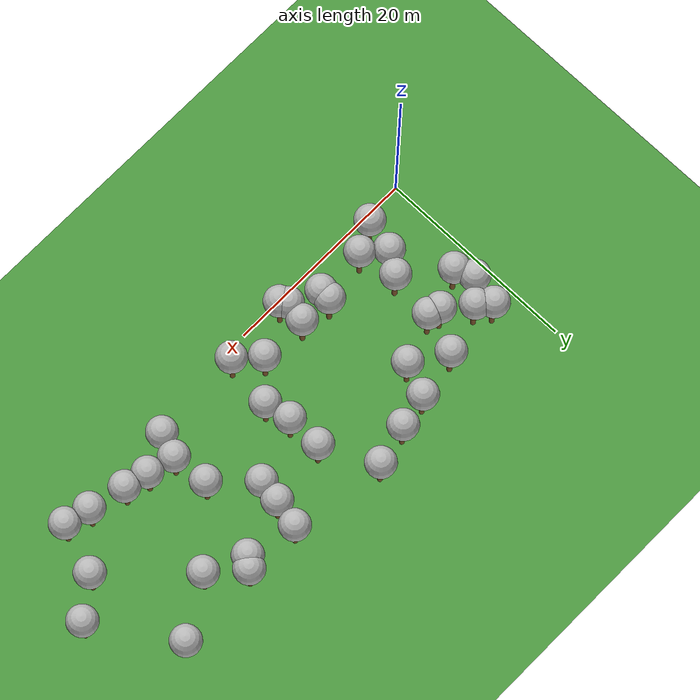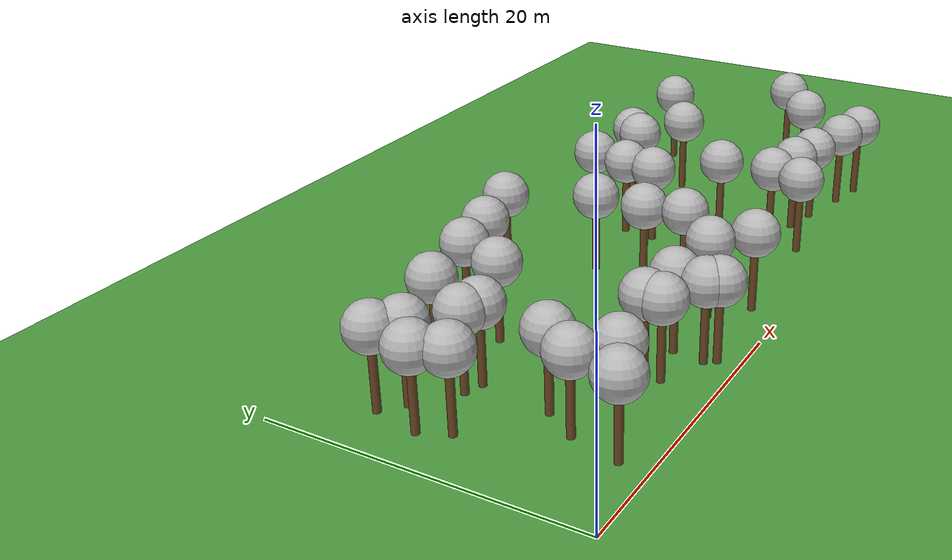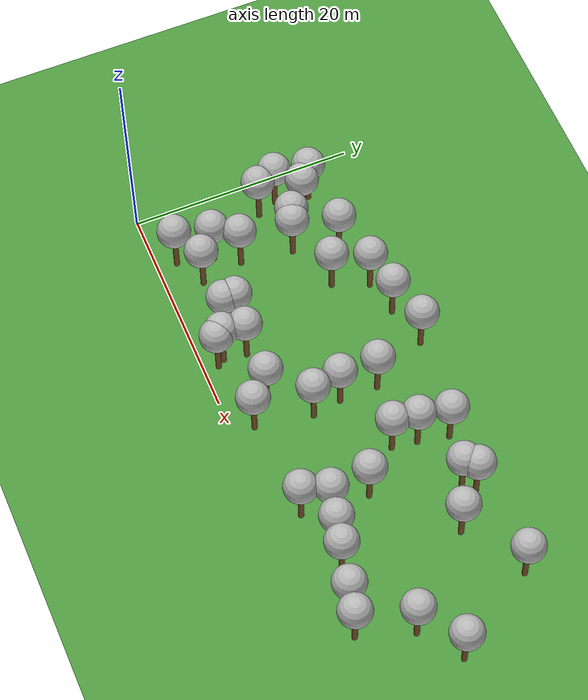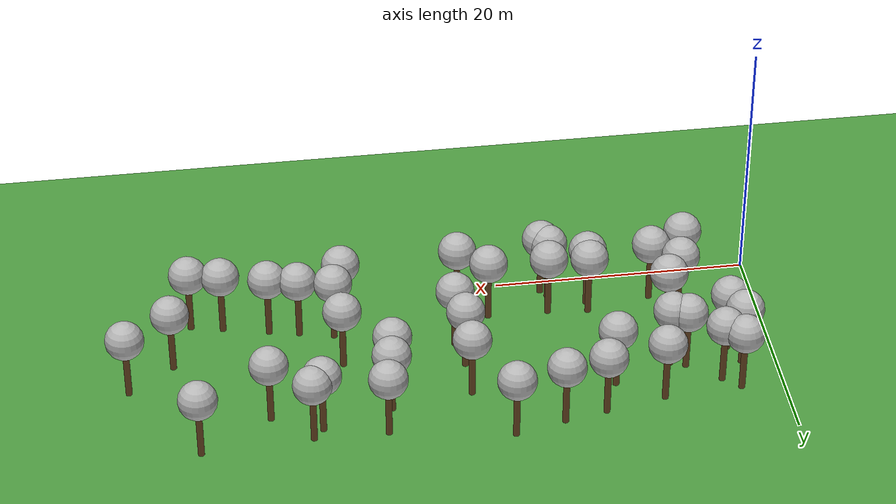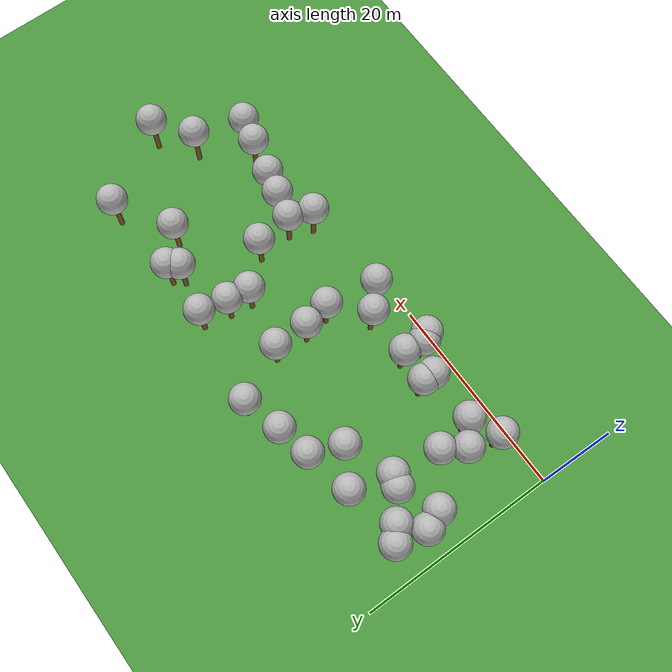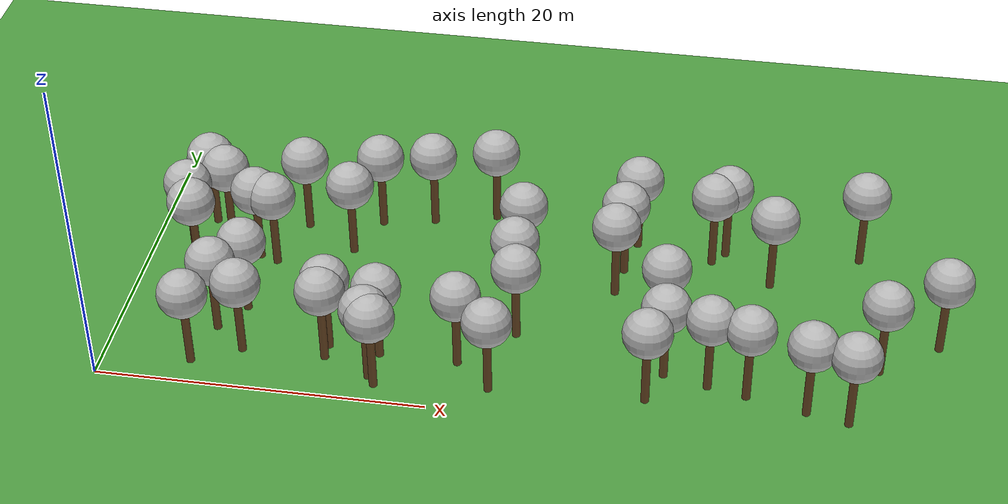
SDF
<sdf version="1.5">
 <world name="default">
  <model name="tree_simple495">
   <static>1</static>
   <link name="link">
    <pose>0 0 0.1 0 -0 0</pose>
    <collision name="collision_trunk">
     <pose>0 0 2 0 -0 0</pose>
     <geometry><cylinder><radius>0.25</radius><length>4</length></cylinder></geometry>
    </collision>
    <collision name="collision_treetop">
     <pose>0 0 5.2 0 -0 0</pose>
     <geometry><sphere><radius>1.5</radius></sphere></geometry>
    </collision>
    <visual name="trunk">
     <pose>0 0 2 0 -0 0</pose>
     <geometry><cylinder><radius>0.25</radius><length>4</length></cylinder></geometry>
     <material>
      <script>
       <uri>model://tree_simple/scripts</uri>
       <uri>model://tree_simple/materials/textures</uri>
       <name>TreeSimple/Trunk</name>
      </script>
     </material>
    </visual>
    <visual name="treetop">
     <pose>0 0 5.2 0 -0 0</pose>
     <geometry><sphere><radius>1.5</radius></sphere></geometry>
     <material>
      <script>
       <uri>model://tree_simple/scripts</uri>
       <uri>model://tree_simple/materials/textures</uri>
       <name>TreeSimple/Treetop</name>
      </script>
     </material>
    </visual>
   </link>
   <pose>13.2663357304 3.23501246435 0 0 -0 0</pose>
  </model>
  <model name="tree_simple487">
   <static>1</static>
   <link name="link">
    <pose>0 0 0.1 0 -0 0</pose>
    <collision name="collision_trunk">
     <pose>0 0 2 0 -0 0</pose>
     <geometry><cylinder><radius>0.25</radius><length>4</length></cylinder></geometry>
    </collision>
    <collision name="collision_treetop">
     <pose>0 0 5.2 0 -0 0</pose>
     <geometry><sphere><radius>1.5</radius></sphere></geometry>
    </collision>
    <visual name="trunk">
     <pose>0 0 2 0 -0 0</pose>
     <geometry><cylinder><radius>0.25</radius><length>4</length></cylinder></geometry>
     <material>
      <script>
       <uri>model://tree_simple/scripts</uri>
       <uri>model://tree_simple/materials/textures</uri>
       <name>TreeSimple/Trunk</name>
      </script>
     </material>
    </visual>
    <visual name="treetop">
     <pose>0 0 5.2 0 -0 0</pose>
     <geometry><sphere><radius>1.5</radius></sphere></geometry>
     <material>
      <script>
       <uri>model://tree_simple/scripts</uri>
       <uri>model://tree_simple/materials/textures</uri>
       <name>TreeSimple/Treetop</name>
      </script>
     </material>
    </visual>
   </link>
   <pose>33.1280168764 8.35331864597 0 0 -0 0</pose>
  </model>
  <model name="tree_simple486">
   <static>1</static>
   <link name="link">
    <pose>0 0 0.1 0 -0 0</pose>
    <collision name="collision_trunk">
     <pose>0 0 2 0 -0 0</pose>
     <geometry><cylinder><radius>0.25</radius><length>4</length></cylinder></geometry>
    </collision>
    <collision name="collision_treetop">
     <pose>0 0 5.2 0 -0 0</pose>
     <geometry><sphere><radius>1.5</radius></sphere></geometry>
    </collision>
    <visual name="trunk">
     <pose>0 0 2 0 -0 0</pose>
     <geometry><cylinder><radius>0.25</radius><length>4</length></cylinder></geometry>
     <material>
      <script>
       <uri>model://tree_simple/scripts</uri>
       <uri>model://tree_simple/materials/textures</uri>
       <name>TreeSimple/Trunk</name>
      </script>
     </material>
    </visual>
    <visual name="treetop">
     <pose>0 0 5.2 0 -0 0</pose>
     <geometry><sphere><radius>1.5</radius></sphere></geometry>
     <material>
      <script>
       <uri>model://tree_simple/scripts</uri>
       <uri>model://tree_simple/materials/textures</uri>
       <name>TreeSimple/Treetop</name>
      </script>
     </material>
    </visual>
   </link>
   <pose>8.18281559396 11.6524151823 0 0 -0 0</pose>
  </model>
  <model name="tree_simple485">
   <static>1</static>
   <link name="link">
    <pose>0 0 0.1 0 -0 0</pose>
    <collision name="collision_trunk">
     <pose>0 0 2 0 -0 0</pose>
     <geometry><cylinder><radius>0.25</radius><length>4</length></cylinder></geometry>
    </collision>
    <collision name="collision_treetop">
     <pose>0 0 5.2 0 -0 0</pose>
     <geometry><sphere><radius>1.5</radius></sphere></geometry>
    </collision>
    <visual name="trunk">
     <pose>0 0 2 0 -0 0</pose>
     <geometry><cylinder><radius>0.25</radius><length>4</length></cylinder></geometry>
     <material>
      <script>
       <uri>model://tree_simple/scripts</uri>
       <uri>model://tree_simple/materials/textures</uri>
       <name>TreeSimple/Trunk</name>
      </script>
     </material>
    </visual>
    <visual name="treetop">
     <pose>0 0 5.2 0 -0 0</pose>
     <geometry><sphere><radius>1.5</radius></sphere></geometry>
     <material>
      <script>
       <uri>model://tree_simple/scripts</uri>
       <uri>model://tree_simple/materials/textures</uri>
       <name>TreeSimple/Treetop</name>
      </script>
     </material>
    </visual>
   </link>
   <pose>38.4673421664 3.60529435805 0 0 -0 0</pose>
  </model>
  <model name="tree_simple431">
   <static>1</static>
   <link name="link">
    <pose>0 0 0.1 0 -0 0</pose>
    <collision name="collision_trunk">
     <pose>0 0 2 0 -0 0</pose>
     <geometry><cylinder><radius>0.25</radius><length>4</length></cylinder></geometry>
    </collision>
    <collision name="collision_treetop">
     <pose>0 0 5.2 0 -0 0</pose>
     <geometry><sphere><radius>1.5</radius></sphere></geometry>
    </collision>
    <visual name="trunk">
     <pose>0 0 2 0 -0 0</pose>
     <geometry><cylinder><radius>0.25</radius><length>4</length></cylinder></geometry>
     <material>
      <script>
       <uri>model://tree_simple/scripts</uri>
       <uri>model://tree_simple/materials/textures</uri>
       <name>TreeSimple/Trunk</name>
      </script>
     </material>
    </visual>
    <visual name="treetop">
     <pose>0 0 5.2 0 -0 0</pose>
     <geometry><sphere><radius>1.5</radius></sphere></geometry>
     <material>
      <script>
       <uri>model://tree_simple/scripts</uri>
       <uri>model://tree_simple/materials/textures</uri>
       <name>TreeSimple/Treetop</name>
      </script>
     </material>
    </visual>
   </link>
   <pose>21.2091972338 3.93897030512 0 0 -0 0</pose>
  </model>
  <model name="tree_simple421">
   <static>1</static>
   <link name="link">
    <pose>0 0 0.1 0 -0 0</pose>
    <collision name="collision_trunk">
     <pose>0 0 2 0 -0 0</pose>
     <geometry><cylinder><radius>0.25</radius><length>4</length></cylinder></geometry>
    </collision>
    <collision name="collision_treetop">
     <pose>0 0 5.2 0 -0 0</pose>
     <geometry><sphere><radius>1.5</radius></sphere></geometry>
    </collision>
    <visual name="trunk">
     <pose>0 0 2 0 -0 0</pose>
     <geometry><cylinder><radius>0.25</radius><length>4</length></cylinder></geometry>
     <material>
      <script>
       <uri>model://tree_simple/scripts</uri>
       <uri>model://tree_simple/materials/textures</uri>
       <name>TreeSimple/Trunk</name>
      </script>
     </material>
    </visual>
    <visual name="treetop">
     <pose>0 0 5.2 0 -0 0</pose>
     <geometry><sphere><radius>1.5</radius></sphere></geometry>
     <material>
      <script>
       <uri>model://tree_simple/scripts</uri>
       <uri>model://tree_simple/materials/textures</uri>
       <name>TreeSimple/Treetop</name>
      </script>
     </material>
    </visual>
   </link>
   <pose>7.02492588621 12.0559728025 0 0 -0 0</pose>
  </model>
  <model name="tree_simple354">
   <static>1</static>
   <link name="link">
    <pose>0 0 0.1 0 -0 0</pose>
    <collision name="collision_trunk">
     <pose>0 0 2 0 -0 0</pose>
     <geometry><cylinder><radius>0.25</radius><length>4</length></cylinder></geometry>
    </collision>
    <collision name="collision_treetop">
     <pose>0 0 5.2 0 -0 0</pose>
     <geometry><sphere><radius>1.5</radius></sphere></geometry>
    </collision>
    <visual name="trunk">
     <pose>0 0 2 0 -0 0</pose>
     <geometry><cylinder><radius>0.25</radius><length>4</length></cylinder></geometry>
     <material>
      <script>
       <uri>model://tree_simple/scripts</uri>
       <uri>model://tree_simple/materials/textures</uri>
       <name>TreeSimple/Trunk</name>
      </script>
     </material>
    </visual>
    <visual name="treetop">
     <pose>0 0 5.2 0 -0 0</pose>
     <geometry><sphere><radius>1.5</radius></sphere></geometry>
     <material>
      <script>
       <uri>model://tree_simple/scripts</uri>
       <uri>model://tree_simple/materials/textures</uri>
       <name>TreeSimple/Treetop</name>
      </script>
     </material>
    </visual>
   </link>
   <pose>32.6407591413 2.42607799047 0 0 -0 0</pose>
  </model>
  <model name="tree_simple350">
   <static>1</static>
   <link name="link">
    <pose>0 0 0.1 0 -0 0</pose>
    <collision name="collision_trunk">
     <pose>0 0 2 0 -0 0</pose>
     <geometry><cylinder><radius>0.25</radius><length>4</length></cylinder></geometry>
    </collision>
    <collision name="collision_treetop">
     <pose>0 0 5.2 0 -0 0</pose>
     <geometry><sphere><radius>1.5</radius></sphere></geometry>
    </collision>
    <visual name="trunk">
     <pose>0 0 2 0 -0 0</pose>
     <geometry><cylinder><radius>0.25</radius><length>4</length></cylinder></geometry>
     <material>
      <script>
       <uri>model://tree_simple/scripts</uri>
       <uri>model://tree_simple/materials/textures</uri>
       <name>TreeSimple/Trunk</name>
      </script>
     </material>
    </visual>
    <visual name="treetop">
     <pose>0 0 5.2 0 -0 0</pose>
     <geometry><sphere><radius>1.5</radius></sphere></geometry>
     <material>
      <script>
       <uri>model://tree_simple/scripts</uri>
       <uri>model://tree_simple/materials/textures</uri>
       <name>TreeSimple/Treetop</name>
      </script>
     </material>
    </visual>
   </link>
   <pose>5.40258361507 1.7380066323 0 0 -0 0</pose>
  </model>
  <model name="tree_simple346">
   <static>1</static>
   <link name="link">
    <pose>0 0 0.1 0 -0 0</pose>
    <collision name="collision_trunk">
     <pose>0 0 2 0 -0 0</pose>
     <geometry><cylinder><radius>0.25</radius><length>4</length></cylinder></geometry>
    </collision>
    <collision name="collision_treetop">
     <pose>0 0 5.2 0 -0 0</pose>
     <geometry><sphere><radius>1.5</radius></sphere></geometry>
    </collision>
    <visual name="trunk">
     <pose>0 0 2 0 -0 0</pose>
     <geometry><cylinder><radius>0.25</radius><length>4</length></cylinder></geometry>
     <material>
      <script>
       <uri>model://tree_simple/scripts</uri>
       <uri>model://tree_simple/materials/textures</uri>
       <name>TreeSimple/Trunk</name>
      </script>
     </material>
    </visual>
    <visual name="treetop">
     <pose>0 0 5.2 0 -0 0</pose>
     <geometry><sphere><radius>1.5</radius></sphere></geometry>
     <material>
      <script>
       <uri>model://tree_simple/scripts</uri>
       <uri>model://tree_simple/materials/textures</uri>
       <name>TreeSimple/Treetop</name>
      </script>
     </material>
    </visual>
   </link>
   <pose>6.18558583868 4.91340003373 0 0 -0 0</pose>
  </model>
  <model name="tree_simple324">
   <static>1</static>
   <link name="link">
    <pose>0 0 0.1 0 -0 0</pose>
    <collision name="collision_trunk">
     <pose>0 0 2 0 -0 0</pose>
     <geometry><cylinder><radius>0.25</radius><length>4</length></cylinder></geometry>
    </collision>
    <collision name="collision_treetop">
     <pose>0 0 5.2 0 -0 0</pose>
     <geometry><sphere><radius>1.5</radius></sphere></geometry>
    </collision>
    <visual name="trunk">
     <pose>0 0 2 0 -0 0</pose>
     <geometry><cylinder><radius>0.25</radius><length>4</length></cylinder></geometry>
     <material>
      <script>
       <uri>model://tree_simple/scripts</uri>
       <uri>model://tree_simple/materials/textures</uri>
       <name>TreeSimple/Trunk</name>
      </script>
     </material>
    </visual>
    <visual name="treetop">
     <pose>0 0 5.2 0 -0 0</pose>
     <geometry><sphere><radius>1.5</radius></sphere></geometry>
     <material>
      <script>
       <uri>model://tree_simple/scripts</uri>
       <uri>model://tree_simple/materials/textures</uri>
       <name>TreeSimple/Treetop</name>
      </script>
     </material>
    </visual>
   </link>
   <pose>2.67974288493 12.1656578915 0 0 -0 0</pose>
  </model>
  <model name="tree_simple304">
   <static>1</static>
   <link name="link">
    <pose>0 0 0.1 0 -0 0</pose>
    <collision name="collision_trunk">
     <pose>0 0 2 0 -0 0</pose>
     <geometry><cylinder><radius>0.25</radius><length>4</length></cylinder></geometry>
    </collision>
    <collision name="collision_treetop">
     <pose>0 0 5.2 0 -0 0</pose>
     <geometry><sphere><radius>1.5</radius></sphere></geometry>
    </collision>
    <visual name="trunk">
     <pose>0 0 2 0 -0 0</pose>
     <geometry><cylinder><radius>0.25</radius><length>4</length></cylinder></geometry>
     <material>
      <script>
       <uri>model://tree_simple/scripts</uri>
       <uri>model://tree_simple/materials/textures</uri>
       <name>TreeSimple/Trunk</name>
      </script>
     </material>
    </visual>
    <visual name="treetop">
     <pose>0 0 5.2 0 -0 0</pose>
     <geometry><sphere><radius>1.5</radius></sphere></geometry>
     <material>
      <script>
       <uri>model://tree_simple/scripts</uri>
       <uri>model://tree_simple/materials/textures</uri>
       <name>TreeSimple/Treetop</name>
      </script>
     </material>
    </visual>
   </link>
   <pose>12.7492321523 13.4736505169 0 0 -0 0</pose>
  </model>
  <model name="tree_simple297">
   <static>1</static>
   <link name="link">
    <pose>0 0 0.1 0 -0 0</pose>
    <collision name="collision_trunk">
     <pose>0 0 2 0 -0 0</pose>
     <geometry><cylinder><radius>0.25</radius><length>4</length></cylinder></geometry>
    </collision>
    <collision name="collision_treetop">
     <pose>0 0 5.2 0 -0 0</pose>
     <geometry><sphere><radius>1.5</radius></sphere></geometry>
    </collision>
    <visual name="trunk">
     <pose>0 0 2 0 -0 0</pose>
     <geometry><cylinder><radius>0.25</radius><length>4</length></cylinder></geometry>
     <material>
      <script>
       <uri>model://tree_simple/scripts</uri>
       <uri>model://tree_simple/materials/textures</uri>
       <name>TreeSimple/Trunk</name>
      </script>
     </material>
    </visual>
    <visual name="treetop">
     <pose>0 0 5.2 0 -0 0</pose>
     <geometry><sphere><radius>1.5</radius></sphere></geometry>
     <material>
      <script>
       <uri>model://tree_simple/scripts</uri>
       <uri>model://tree_simple/materials/textures</uri>
       <name>TreeSimple/Treetop</name>
      </script>
     </material>
    </visual>
   </link>
   <pose>30.5775161842 16.8175844191 0 0 -0 0</pose>
  </model>
  <model name="tree_simple296">
   <static>1</static>
   <link name="link">
    <pose>0 0 0.1 0 -0 0</pose>
    <collision name="collision_trunk">
     <pose>0 0 2 0 -0 0</pose>
     <geometry><cylinder><radius>0.25</radius><length>4</length></cylinder></geometry>
    </collision>
    <collision name="collision_treetop">
     <pose>0 0 5.2 0 -0 0</pose>
     <geometry><sphere><radius>1.5</radius></sphere></geometry>
    </collision>
    <visual name="trunk">
     <pose>0 0 2 0 -0 0</pose>
     <geometry><cylinder><radius>0.25</radius><length>4</length></cylinder></geometry>
     <material>
      <script>
       <uri>model://tree_simple/scripts</uri>
       <uri>model://tree_simple/materials/textures</uri>
       <name>TreeSimple/Trunk</name>
      </script>
     </material>
    </visual>
    <visual name="treetop">
     <pose>0 0 5.2 0 -0 0</pose>
     <geometry><sphere><radius>1.5</radius></sphere></geometry>
     <material>
      <script>
       <uri>model://tree_simple/scripts</uri>
       <uri>model://tree_simple/materials/textures</uri>
       <name>TreeSimple/Treetop</name>
      </script>
     </material>
    </visual>
   </link>
   <pose>44.6267245304 17.3019041373 0 0 -0 0</pose>
  </model>
  <model name="tree_simple293">
   <static>1</static>
   <link name="link">
    <pose>0 0 0.1 0 -0 0</pose>
    <collision name="collision_trunk">
     <pose>0 0 2 0 -0 0</pose>
     <geometry><cylinder><radius>0.25</radius><length>4</length></cylinder></geometry>
    </collision>
    <collision name="collision_treetop">
     <pose>0 0 5.2 0 -0 0</pose>
     <geometry><sphere><radius>1.5</radius></sphere></geometry>
    </collision>
    <visual name="trunk">
     <pose>0 0 2 0 -0 0</pose>
     <geometry><cylinder><radius>0.25</radius><length>4</length></cylinder></geometry>
     <material>
      <script>
       <uri>model://tree_simple/scripts</uri>
       <uri>model://tree_simple/materials/textures</uri>
       <name>TreeSimple/Trunk</name>
      </script>
     </material>
    </visual>
    <visual name="treetop">
     <pose>0 0 5.2 0 -0 0</pose>
     <geometry><sphere><radius>1.5</radius></sphere></geometry>
     <material>
      <script>
       <uri>model://tree_simple/scripts</uri>
       <uri>model://tree_simple/materials/textures</uri>
       <name>TreeSimple/Treetop</name>
      </script>
     </material>
    </visual>
   </link>
   <pose>23.4063524119 1.93979754522 0 0 -0 0</pose>
  </model>
  <model name="tree_simple283">
   <static>1</static>
   <link name="link">
    <pose>0 0 0.1 0 -0 0</pose>
    <collision name="collision_trunk">
     <pose>0 0 2 0 -0 0</pose>
     <geometry><cylinder><radius>0.25</radius><length>4</length></cylinder></geometry>
    </collision>
    <collision name="collision_treetop">
     <pose>0 0 5.2 0 -0 0</pose>
     <geometry><sphere><radius>1.5</radius></sphere></geometry>
    </collision>
    <visual name="trunk">
     <pose>0 0 2 0 -0 0</pose>
     <geometry><cylinder><radius>0.25</radius><length>4</length></cylinder></geometry>
     <material>
      <script>
       <uri>model://tree_simple/scripts</uri>
       <uri>model://tree_simple/materials/textures</uri>
       <name>TreeSimple/Trunk</name>
      </script>
     </material>
    </visual>
    <visual name="treetop">
     <pose>0 0 5.2 0 -0 0</pose>
     <geometry><sphere><radius>1.5</radius></sphere></geometry>
     <material>
      <script>
       <uri>model://tree_simple/scripts</uri>
       <uri>model://tree_simple/materials/textures</uri>
       <name>TreeSimple/Treetop</name>
      </script>
     </material>
    </visual>
   </link>
   <pose>39.1815186035 14.0237047255 0 0 -0 0</pose>
  </model>
  <model name="tree_simple277">
   <static>1</static>
   <link name="link">
    <pose>0 0 0.1 0 -0 0</pose>
    <collision name="collision_trunk">
     <pose>0 0 2 0 -0 0</pose>
     <geometry><cylinder><radius>0.25</radius><length>4</length></cylinder></geometry>
    </collision>
    <collision name="collision_treetop">
     <pose>0 0 5.2 0 -0 0</pose>
     <geometry><sphere><radius>1.5</radius></sphere></geometry>
    </collision>
    <visual name="trunk">
     <pose>0 0 2 0 -0 0</pose>
     <geometry><cylinder><radius>0.25</radius><length>4</length></cylinder></geometry>
     <material>
      <script>
       <uri>model://tree_simple/scripts</uri>
       <uri>model://tree_simple/materials/textures</uri>
       <name>TreeSimple/Trunk</name>
      </script>
     </material>
    </visual>
    <visual name="treetop">
     <pose>0 0 5.2 0 -0 0</pose>
     <geometry><sphere><radius>1.5</radius></sphere></geometry>
     <material>
      <script>
       <uri>model://tree_simple/scripts</uri>
       <uri>model://tree_simple/materials/textures</uri>
       <name>TreeSimple/Treetop</name>
      </script>
     </material>
    </visual>
   </link>
   <pose>29.6986775877 11.8803123921 0 0 -0 0</pose>
  </model>
  <model name="tree_simple274">
   <static>1</static>
   <link name="link">
    <pose>0 0 0.1 0 -0 0</pose>
    <collision name="collision_trunk">
     <pose>0 0 2 0 -0 0</pose>
     <geometry><cylinder><radius>0.25</radius><length>4</length></cylinder></geometry>
    </collision>
    <collision name="collision_treetop">
     <pose>0 0 5.2 0 -0 0</pose>
     <geometry><sphere><radius>1.5</radius></sphere></geometry>
    </collision>
    <visual name="trunk">
     <pose>0 0 2 0 -0 0</pose>
     <geometry><cylinder><radius>0.25</radius><length>4</length></cylinder></geometry>
     <material>
      <script>
       <uri>model://tree_simple/scripts</uri>
       <uri>model://tree_simple/materials/textures</uri>
       <name>TreeSimple/Trunk</name>
      </script>
     </material>
    </visual>
    <visual name="treetop">
     <pose>0 0 5.2 0 -0 0</pose>
     <geometry><sphere><radius>1.5</radius></sphere></geometry>
     <material>
      <script>
       <uri>model://tree_simple/scripts</uri>
       <uri>model://tree_simple/materials/textures</uri>
       <name>TreeSimple/Treetop</name>
      </script>
     </material>
    </visual>
   </link>
   <pose>36.1444858675 4.12221392714 0 0 -0 0</pose>
  </model>
  <model name="tree_simple270">
   <static>1</static>
   <link name="link">
    <pose>0 0 0.1 0 -0 0</pose>
    <collision name="collision_trunk">
     <pose>0 0 2 0 -0 0</pose>
     <geometry><cylinder><radius>0.25</radius><length>4</length></cylinder></geometry>
    </collision>
    <collision name="collision_treetop">
     <pose>0 0 5.2 0 -0 0</pose>
     <geometry><sphere><radius>1.5</radius></sphere></geometry>
    </collision>
    <visual name="trunk">
     <pose>0 0 2 0 -0 0</pose>
     <geometry><cylinder><radius>0.25</radius><length>4</length></cylinder></geometry>
     <material>
      <script>
       <uri>model://tree_simple/scripts</uri>
       <uri>model://tree_simple/materials/textures</uri>
       <name>TreeSimple/Trunk</name>
      </script>
     </material>
    </visual>
    <visual name="treetop">
     <pose>0 0 5.2 0 -0 0</pose>
     <geometry><sphere><radius>1.5</radius></sphere></geometry>
     <material>
      <script>
       <uri>model://tree_simple/scripts</uri>
       <uri>model://tree_simple/materials/textures</uri>
       <name>TreeSimple/Treetop</name>
      </script>
     </material>
    </visual>
   </link>
   <pose>36.1848743211 16.7262379366 0 0 -0 0</pose>
  </model>
  <model name="tree_simple269">
   <static>1</static>
   <link name="link">
    <pose>0 0 0.1 0 -0 0</pose>
    <collision name="collision_trunk">
     <pose>0 0 2 0 -0 0</pose>
     <geometry><cylinder><radius>0.25</radius><length>4</length></cylinder></geometry>
    </collision>
    <collision name="collision_treetop">
     <pose>0 0 5.2 0 -0 0</pose>
     <geometry><sphere><radius>1.5</radius></sphere></geometry>
    </collision>
    <visual name="trunk">
     <pose>0 0 2 0 -0 0</pose>
     <geometry><cylinder><radius>0.25</radius><length>4</length></cylinder></geometry>
     <material>
      <script>
       <uri>model://tree_simple/scripts</uri>
       <uri>model://tree_simple/materials/textures</uri>
       <name>TreeSimple/Trunk</name>
      </script>
     </material>
    </visual>
    <visual name="treetop">
     <pose>0 0 5.2 0 -0 0</pose>
     <geometry><sphere><radius>1.5</radius></sphere></geometry>
     <material>
      <script>
       <uri>model://tree_simple/scripts</uri>
       <uri>model://tree_simple/materials/textures</uri>
       <name>TreeSimple/Treetop</name>
      </script>
     </material>
    </visual>
   </link>
   <pose>3.4316618278 10.3418603378 0 0 -0 0</pose>
  </model>
  <model name="tree_simple246">
   <static>1</static>
   <link name="link">
    <pose>0 0 0.1 0 -0 0</pose>
    <collision name="collision_trunk">
     <pose>0 0 2 0 -0 0</pose>
     <geometry><cylinder><radius>0.25</radius><length>4</length></cylinder></geometry>
    </collision>
    <collision name="collision_treetop">
     <pose>0 0 5.2 0 -0 0</pose>
     <geometry><sphere><radius>1.5</radius></sphere></geometry>
    </collision>
    <visual name="trunk">
     <pose>0 0 2 0 -0 0</pose>
     <geometry><cylinder><radius>0.25</radius><length>4</length></cylinder></geometry>
     <material>
      <script>
       <uri>model://tree_simple/scripts</uri>
       <uri>model://tree_simple/materials/textures</uri>
       <name>TreeSimple/Trunk</name>
      </script>
     </material>
    </visual>
    <visual name="treetop">
     <pose>0 0 5.2 0 -0 0</pose>
     <geometry><sphere><radius>1.5</radius></sphere></geometry>
     <material>
      <script>
       <uri>model://tree_simple/scripts</uri>
       <uri>model://tree_simple/materials/textures</uri>
       <name>TreeSimple/Treetop</name>
      </script>
     </material>
    </visual>
   </link>
   <pose>4.59531277399 14.0377896265 0 0 -0 0</pose>
  </model>
  <model name="tree_simple242">
   <static>1</static>
   <link name="link">
    <pose>0 0 0.1 0 -0 0</pose>
    <collision name="collision_trunk">
     <pose>0 0 2 0 -0 0</pose>
     <geometry><cylinder><radius>0.25</radius><length>4</length></cylinder></geometry>
    </collision>
    <collision name="collision_treetop">
     <pose>0 0 5.2 0 -0 0</pose>
     <geometry><sphere><radius>1.5</radius></sphere></geometry>
    </collision>
    <visual name="trunk">
     <pose>0 0 2 0 -0 0</pose>
     <geometry><cylinder><radius>0.25</radius><length>4</length></cylinder></geometry>
     <material>
      <script>
       <uri>model://tree_simple/scripts</uri>
       <uri>model://tree_simple/materials/textures</uri>
       <name>TreeSimple/Trunk</name>
      </script>
     </material>
    </visual>
    <visual name="treetop">
     <pose>0 0 5.2 0 -0 0</pose>
     <geometry><sphere><radius>1.5</radius></sphere></geometry>
     <material>
      <script>
       <uri>model://tree_simple/scripts</uri>
       <uri>model://tree_simple/materials/textures</uri>
       <name>TreeSimple/Treetop</name>
      </script>
     </material>
    </visual>
   </link>
   <pose>23.8093795921 9.61974989159 0 0 -0 0</pose>
  </model>
  <model name="tree_simple237">
   <static>1</static>
   <link name="link">
    <pose>0 0 0.1 0 -0 0</pose>
    <collision name="collision_trunk">
     <pose>0 0 2 0 -0 0</pose>
     <geometry><cylinder><radius>0.25</radius><length>4</length></cylinder></geometry>
    </collision>
    <collision name="collision_treetop">
     <pose>0 0 5.2 0 -0 0</pose>
     <geometry><sphere><radius>1.5</radius></sphere></geometry>
    </collision>
    <visual name="trunk">
     <pose>0 0 2 0 -0 0</pose>
     <geometry><cylinder><radius>0.25</radius><length>4</length></cylinder></geometry>
     <material>
      <script>
       <uri>model://tree_simple/scripts</uri>
       <uri>model://tree_simple/materials/textures</uri>
       <name>TreeSimple/Trunk</name>
      </script>
     </material>
    </visual>
    <visual name="treetop">
     <pose>0 0 5.2 0 -0 0</pose>
     <geometry><sphere><radius>1.5</radius></sphere></geometry>
     <material>
      <script>
       <uri>model://tree_simple/scripts</uri>
       <uri>model://tree_simple/materials/textures</uri>
       <name>TreeSimple/Treetop</name>
      </script>
     </material>
    </visual>
   </link>
   <pose>23.796461239 13.0760295483 0 0 -0 0</pose>
  </model>
  <model name="tree_simple214">
   <static>1</static>
   <link name="link">
    <pose>0 0 0.1 0 -0 0</pose>
    <collision name="collision_trunk">
     <pose>0 0 2 0 -0 0</pose>
     <geometry><cylinder><radius>0.25</radius><length>4</length></cylinder></geometry>
    </collision>
    <collision name="collision_treetop">
     <pose>0 0 5.2 0 -0 0</pose>
     <geometry><sphere><radius>1.5</radius></sphere></geometry>
    </collision>
    <visual name="trunk">
     <pose>0 0 2 0 -0 0</pose>
     <geometry><cylinder><radius>0.25</radius><length>4</length></cylinder></geometry>
     <material>
      <script>
       <uri>model://tree_simple/scripts</uri>
       <uri>model://tree_simple/materials/textures</uri>
       <name>TreeSimple/Trunk</name>
      </script>
     </material>
    </visual>
    <visual name="treetop">
     <pose>0 0 5.2 0 -0 0</pose>
     <geometry><sphere><radius>1.5</radius></sphere></geometry>
     <material>
      <script>
       <uri>model://tree_simple/scripts</uri>
       <uri>model://tree_simple/materials/textures</uri>
       <name>TreeSimple/Treetop</name>
      </script>
     </material>
    </visual>
   </link>
   <pose>16.4618787814 3.98227082292 0 0 -0 0</pose>
  </model>
  <model name="tree_simple160">
   <static>1</static>
   <link name="link">
    <pose>0 0 0.1 0 -0 0</pose>
    <collision name="collision_trunk">
     <pose>0 0 2 0 -0 0</pose>
     <geometry><cylinder><radius>0.25</radius><length>4</length></cylinder></geometry>
    </collision>
    <collision name="collision_treetop">
     <pose>0 0 5.2 0 -0 0</pose>
     <geometry><sphere><radius>1.5</radius></sphere></geometry>
    </collision>
    <visual name="trunk">
     <pose>0 0 2 0 -0 0</pose>
     <geometry><cylinder><radius>0.25</radius><length>4</length></cylinder></geometry>
     <material>
      <script>
       <uri>model://tree_simple/scripts</uri>
       <uri>model://tree_simple/materials/textures</uri>
       <name>TreeSimple/Trunk</name>
      </script>
     </material>
    </visual>
    <visual name="treetop">
     <pose>0 0 5.2 0 -0 0</pose>
     <geometry><sphere><radius>1.5</radius></sphere></geometry>
     <material>
      <script>
       <uri>model://tree_simple/scripts</uri>
       <uri>model://tree_simple/materials/textures</uri>
       <name>TreeSimple/Treetop</name>
      </script>
     </material>
    </visual>
   </link>
   <pose>3.31258380175 15.1525774981 0 0 -0 0</pose>
  </model>
  <model name="tree_simple151">
   <static>1</static>
   <link name="link">
    <pose>0 0 0.1 0 -0 0</pose>
    <collision name="collision_trunk">
     <pose>0 0 2 0 -0 0</pose>
     <geometry><cylinder><radius>0.25</radius><length>4</length></cylinder></geometry>
    </collision>
    <collision name="collision_treetop">
     <pose>0 0 5.2 0 -0 0</pose>
     <geometry><sphere><radius>1.5</radius></sphere></geometry>
    </collision>
    <visual name="trunk">
     <pose>0 0 2 0 -0 0</pose>
     <geometry><cylinder><radius>0.25</radius><length>4</length></cylinder></geometry>
     <material>
      <script>
       <uri>model://tree_simple/scripts</uri>
       <uri>model://tree_simple/materials/textures</uri>
       <name>TreeSimple/Trunk</name>
      </script>
     </material>
    </visual>
    <visual name="treetop">
     <pose>0 0 5.2 0 -0 0</pose>
     <geometry><sphere><radius>1.5</radius></sphere></geometry>
     <material>
      <script>
       <uri>model://tree_simple/scripts</uri>
       <uri>model://tree_simple/materials/textures</uri>
       <name>TreeSimple/Treetop</name>
      </script>
     </material>
    </visual>
   </link>
   <pose>44.4996407391 2.22143393779 0 0 -0 0</pose>
  </model>
  <model name="tree_simple147">
   <static>1</static>
   <link name="link">
    <pose>0 0 0.1 0 -0 0</pose>
    <collision name="collision_trunk">
     <pose>0 0 2 0 -0 0</pose>
     <geometry><cylinder><radius>0.25</radius><length>4</length></cylinder></geometry>
    </collision>
    <collision name="collision_treetop">
     <pose>0 0 5.2 0 -0 0</pose>
     <geometry><sphere><radius>1.5</radius></sphere></geometry>
    </collision>
    <visual name="trunk">
     <pose>0 0 2 0 -0 0</pose>
     <geometry><cylinder><radius>0.25</radius><length>4</length></cylinder></geometry>
     <material>
      <script>
       <uri>model://tree_simple/scripts</uri>
       <uri>model://tree_simple/materials/textures</uri>
       <name>TreeSimple/Trunk</name>
      </script>
     </material>
    </visual>
    <visual name="treetop">
     <pose>0 0 5.2 0 -0 0</pose>
     <geometry><sphere><radius>1.5</radius></sphere></geometry>
     <material>
      <script>
       <uri>model://tree_simple/scripts</uri>
       <uri>model://tree_simple/materials/textures</uri>
       <name>TreeSimple/Treetop</name>
      </script>
     </material>
    </visual>
   </link>
   <pose>35.3937687519 15.7697149942 0 0 -0 0</pose>
  </model>
  <model name="tree_simple145">
   <static>1</static>
   <link name="link">
    <pose>0 0 0.1 0 -0 0</pose>
    <collision name="collision_trunk">
     <pose>0 0 2 0 -0 0</pose>
     <geometry><cylinder><radius>0.25</radius><length>4</length></cylinder></geometry>
    </collision>
    <collision name="collision_treetop">
     <pose>0 0 5.2 0 -0 0</pose>
     <geometry><sphere><radius>1.5</radius></sphere></geometry>
    </collision>
    <visual name="trunk">
     <pose>0 0 2 0 -0 0</pose>
     <geometry><cylinder><radius>0.25</radius><length>4</length></cylinder></geometry>
     <material>
      <script>
       <uri>model://tree_simple/scripts</uri>
       <uri>model://tree_simple/materials/textures</uri>
       <name>TreeSimple/Trunk</name>
      </script>
     </material>
    </visual>
    <visual name="treetop">
     <pose>0 0 5.2 0 -0 0</pose>
     <geometry><sphere><radius>1.5</radius></sphere></geometry>
     <material>
      <script>
       <uri>model://tree_simple/scripts</uri>
       <uri>model://tree_simple/materials/textures</uri>
       <name>TreeSimple/Treetop</name>
      </script>
     </material>
    </visual>
   </link>
   <pose>7.53257093085 6.9864658102 0 0 -0 0</pose>
  </model>
  <model name="tree_simple125">
   <static>1</static>
   <link name="link">
    <pose>0 0 0.1 0 -0 0</pose>
    <collision name="collision_trunk">
     <pose>0 0 2 0 -0 0</pose>
     <geometry><cylinder><radius>0.25</radius><length>4</length></cylinder></geometry>
    </collision>
    <collision name="collision_treetop">
     <pose>0 0 5.2 0 -0 0</pose>
     <geometry><sphere><radius>1.5</radius></sphere></geometry>
    </collision>
    <visual name="trunk">
     <pose>0 0 2 0 -0 0</pose>
     <geometry><cylinder><radius>0.25</radius><length>4</length></cylinder></geometry>
     <material>
      <script>
       <uri>model://tree_simple/scripts</uri>
       <uri>model://tree_simple/materials/textures</uri>
       <name>TreeSimple/Trunk</name>
      </script>
     </material>
    </visual>
    <visual name="treetop">
     <pose>0 0 5.2 0 -0 0</pose>
     <geometry><sphere><radius>1.5</radius></sphere></geometry>
     <material>
      <script>
       <uri>model://tree_simple/scripts</uri>
       <uri>model://tree_simple/materials/textures</uri>
       <name>TreeSimple/Treetop</name>
      </script>
     </material>
    </visual>
   </link>
   <pose>49.6376718654 9.60982885919 0 0 -0 0</pose>
  </model>
  <model name="tree_simple98">
   <static>1</static>
   <link name="link">
    <pose>0 0 0.1 0 -0 0</pose>
    <collision name="collision_trunk">
     <pose>0 0 2 0 -0 0</pose>
     <geometry><cylinder><radius>0.25</radius><length>4</length></cylinder></geometry>
    </collision>
    <collision name="collision_treetop">
     <pose>0 0 5.2 0 -0 0</pose>
     <geometry><sphere><radius>1.5</radius></sphere></geometry>
    </collision>
    <visual name="trunk">
     <pose>0 0 2 0 -0 0</pose>
     <geometry><cylinder><radius>0.25</radius><length>4</length></cylinder></geometry>
     <material>
      <script>
       <uri>model://tree_simple/scripts</uri>
       <uri>model://tree_simple/materials/textures</uri>
       <name>TreeSimple/Trunk</name>
      </script>
     </material>
    </visual>
    <visual name="treetop">
     <pose>0 0 5.2 0 -0 0</pose>
     <geometry><sphere><radius>1.5</radius></sphere></geometry>
     <material>
      <script>
       <uri>model://tree_simple/scripts</uri>
       <uri>model://tree_simple/materials/textures</uri>
       <name>TreeSimple/Treetop</name>
      </script>
     </material>
    </visual>
   </link>
   <pose>14.024693035 16.5700471203 0 0 -0 0</pose>
  </model>
  <model name="tree_simple88">
   <static>1</static>
   <link name="link">
    <pose>0 0 0.1 0 -0 0</pose>
    <collision name="collision_trunk">
     <pose>0 0 2 0 -0 0</pose>
     <geometry><cylinder><radius>0.25</radius><length>4</length></cylinder></geometry>
    </collision>
    <collision name="collision_treetop">
     <pose>0 0 5.2 0 -0 0</pose>
     <geometry><sphere><radius>1.5</radius></sphere></geometry>
    </collision>
    <visual name="trunk">
     <pose>0 0 2 0 -0 0</pose>
     <geometry><cylinder><radius>0.25</radius><length>4</length></cylinder></geometry>
     <material>
      <script>
       <uri>model://tree_simple/scripts</uri>
       <uri>model://tree_simple/materials/textures</uri>
       <name>TreeSimple/Trunk</name>
      </script>
     </material>
    </visual>
    <visual name="treetop">
     <pose>0 0 5.2 0 -0 0</pose>
     <geometry><sphere><radius>1.5</radius></sphere></geometry>
     <material>
      <script>
       <uri>model://tree_simple/scripts</uri>
       <uri>model://tree_simple/materials/textures</uri>
       <name>TreeSimple/Treetop</name>
      </script>
     </material>
    </visual>
   </link>
   <pose>30.0100540879 14.1017102657 0 0 -0 0</pose>
  </model>
  <model name="tree_simple85">
   <static>1</static>
   <link name="link">
    <pose>0 0 0.1 0 -0 0</pose>
    <collision name="collision_trunk">
     <pose>0 0 2 0 -0 0</pose>
     <geometry><cylinder><radius>0.25</radius><length>4</length></cylinder></geometry>
    </collision>
    <collision name="collision_treetop">
     <pose>0 0 5.2 0 -0 0</pose>
     <geometry><sphere><radius>1.5</radius></sphere></geometry>
    </collision>
    <visual name="trunk">
     <pose>0 0 2 0 -0 0</pose>
     <geometry><cylinder><radius>0.25</radius><length>4</length></cylinder></geometry>
     <material>
      <script>
       <uri>model://tree_simple/scripts</uri>
       <uri>model://tree_simple/materials/textures</uri>
       <name>TreeSimple/Trunk</name>
      </script>
     </material>
    </visual>
    <visual name="treetop">
     <pose>0 0 5.2 0 -0 0</pose>
     <geometry><sphere><radius>1.5</radius></sphere></geometry>
     <material>
      <script>
       <uri>model://tree_simple/scripts</uri>
       <uri>model://tree_simple/materials/textures</uri>
       <name>TreeSimple/Treetop</name>
      </script>
     </material>
    </visual>
   </link>
   <pose>9.34911088968 15.5834050792 0 0 -0 0</pose>
  </model>
  <model name="tree_simple84">
   <static>1</static>
   <link name="link">
    <pose>0 0 0.1 0 -0 0</pose>
    <collision name="collision_trunk">
     <pose>0 0 2 0 -0 0</pose>
     <geometry><cylinder><radius>0.25</radius><length>4</length></cylinder></geometry>
    </collision>
    <collision name="collision_treetop">
     <pose>0 0 5.2 0 -0 0</pose>
     <geometry><sphere><radius>1.5</radius></sphere></geometry>
    </collision>
    <visual name="trunk">
     <pose>0 0 2 0 -0 0</pose>
     <geometry><cylinder><radius>0.25</radius><length>4</length></cylinder></geometry>
     <material>
      <script>
       <uri>model://tree_simple/scripts</uri>
       <uri>model://tree_simple/materials/textures</uri>
       <name>TreeSimple/Trunk</name>
      </script>
     </material>
    </visual>
    <visual name="treetop">
     <pose>0 0 5.2 0 -0 0</pose>
     <geometry><sphere><radius>1.5</radius></sphere></geometry>
     <material>
      <script>
       <uri>model://tree_simple/scripts</uri>
       <uri>model://tree_simple/materials/textures</uri>
       <name>TreeSimple/Treetop</name>
      </script>
     </material>
    </visual>
   </link>
   <pose>17.2995655595 17.2600237407 0 0 -0 0</pose>
  </model>
  <model name="tree_simple82">
   <static>1</static>
   <link name="link">
    <pose>0 0 0.1 0 -0 0</pose>
    <collision name="collision_trunk">
     <pose>0 0 2 0 -0 0</pose>
     <geometry><cylinder><radius>0.25</radius><length>4</length></cylinder></geometry>
    </collision>
    <collision name="collision_treetop">
     <pose>0 0 5.2 0 -0 0</pose>
     <geometry><sphere><radius>1.5</radius></sphere></geometry>
    </collision>
    <visual name="trunk">
     <pose>0 0 2 0 -0 0</pose>
     <geometry><cylinder><radius>0.25</radius><length>4</length></cylinder></geometry>
     <material>
      <script>
       <uri>model://tree_simple/scripts</uri>
       <uri>model://tree_simple/materials/textures</uri>
       <name>TreeSimple/Trunk</name>
      </script>
     </material>
    </visual>
    <visual name="treetop">
     <pose>0 0 5.2 0 -0 0</pose>
     <geometry><sphere><radius>1.5</radius></sphere></geometry>
     <material>
      <script>
       <uri>model://tree_simple/scripts</uri>
       <uri>model://tree_simple/materials/textures</uri>
       <name>TreeSimple/Treetop</name>
      </script>
     </material>
    </visual>
   </link>
   <pose>42.0261591118 2.77520756708 0 0 -0 0</pose>
  </model>
  <model name="tree_simple81">
   <static>1</static>
   <link name="link">
    <pose>0 0 0.1 0 -0 0</pose>
    <collision name="collision_trunk">
     <pose>0 0 2 0 -0 0</pose>
     <geometry><cylinder><radius>0.25</radius><length>4</length></cylinder></geometry>
    </collision>
    <collision name="collision_treetop">
     <pose>0 0 5.2 0 -0 0</pose>
     <geometry><sphere><radius>1.5</radius></sphere></geometry>
    </collision>
    <visual name="trunk">
     <pose>0 0 2 0 -0 0</pose>
     <geometry><cylinder><radius>0.25</radius><length>4</length></cylinder></geometry>
     <material>
      <script>
       <uri>model://tree_simple/scripts</uri>
       <uri>model://tree_simple/materials/textures</uri>
       <name>TreeSimple/Trunk</name>
      </script>
     </material>
    </visual>
    <visual name="treetop">
     <pose>0 0 5.2 0 -0 0</pose>
     <geometry><sphere><radius>1.5</radius></sphere></geometry>
     <material>
      <script>
       <uri>model://tree_simple/scripts</uri>
       <uri>model://tree_simple/materials/textures</uri>
       <name>TreeSimple/Treetop</name>
      </script>
     </material>
    </visual>
   </link>
   <pose>13.3023094876 4.29219701126 0 0 -0 0</pose>
  </model>
  <model name="tree_simple74">
   <static>1</static>
   <link name="link">
    <pose>0 0 0.1 0 -0 0</pose>
    <collision name="collision_trunk">
     <pose>0 0 2 0 -0 0</pose>
     <geometry><cylinder><radius>0.25</radius><length>4</length></cylinder></geometry>
    </collision>
    <collision name="collision_treetop">
     <pose>0 0 5.2 0 -0 0</pose>
     <geometry><sphere><radius>1.5</radius></sphere></geometry>
    </collision>
    <visual name="trunk">
     <pose>0 0 2 0 -0 0</pose>
     <geometry><cylinder><radius>0.25</radius><length>4</length></cylinder></geometry>
     <material>
      <script>
       <uri>model://tree_simple/scripts</uri>
       <uri>model://tree_simple/materials/textures</uri>
       <name>TreeSimple/Trunk</name>
      </script>
     </material>
    </visual>
    <visual name="treetop">
     <pose>0 0 5.2 0 -0 0</pose>
     <geometry><sphere><radius>1.5</radius></sphere></geometry>
     <material>
      <script>
       <uri>model://tree_simple/scripts</uri>
       <uri>model://tree_simple/materials/textures</uri>
       <name>TreeSimple/Treetop</name>
      </script>
     </material>
    </visual>
   </link>
   <pose>16.1884917497 1.95365769223 0 0 -0 0</pose>
  </model>
  <model name="tree_simple69">
   <static>1</static>
   <link name="link">
    <pose>0 0 0.1 0 -0 0</pose>
    <collision name="collision_trunk">
     <pose>0 0 2 0 -0 0</pose>
     <geometry><cylinder><radius>0.25</radius><length>4</length></cylinder></geometry>
    </collision>
    <collision name="collision_treetop">
     <pose>0 0 5.2 0 -0 0</pose>
     <geometry><sphere><radius>1.5</radius></sphere></geometry>
    </collision>
    <visual name="trunk">
     <pose>0 0 2 0 -0 0</pose>
     <geometry><cylinder><radius>0.25</radius><length>4</length></cylinder></geometry>
     <material>
      <script>
       <uri>model://tree_simple/scripts</uri>
       <uri>model://tree_simple/materials/textures</uri>
       <name>TreeSimple/Trunk</name>
      </script>
     </material>
    </visual>
    <visual name="treetop">
     <pose>0 0 5.2 0 -0 0</pose>
     <geometry><sphere><radius>1.5</radius></sphere></geometry>
     <material>
      <script>
       <uri>model://tree_simple/scripts</uri>
       <uri>model://tree_simple/materials/textures</uri>
       <name>TreeSimple/Treetop</name>
      </script>
     </material>
    </visual>
   </link>
   <pose>24.2740605354 7.00706746043 0 0 -0 0</pose>
  </model>
  <model name="tree_simple66">
   <static>1</static>
   <link name="link">
    <pose>0 0 0.1 0 -0 0</pose>
    <collision name="collision_trunk">
     <pose>0 0 2 0 -0 0</pose>
     <geometry><cylinder><radius>0.25</radius><length>4</length></cylinder></geometry>
    </collision>
    <collision name="collision_treetop">
     <pose>0 0 5.2 0 -0 0</pose>
     <geometry><sphere><radius>1.5</radius></sphere></geometry>
    </collision>
    <visual name="trunk">
     <pose>0 0 2 0 -0 0</pose>
     <geometry><cylinder><radius>0.25</radius><length>4</length></cylinder></geometry>
     <material>
      <script>
       <uri>model://tree_simple/scripts</uri>
       <uri>model://tree_simple/materials/textures</uri>
       <name>TreeSimple/Trunk</name>
      </script>
     </material>
    </visual>
    <visual name="treetop">
     <pose>0 0 5.2 0 -0 0</pose>
     <geometry><sphere><radius>1.5</radius></sphere></geometry>
     <material>
      <script>
       <uri>model://tree_simple/scripts</uri>
       <uri>model://tree_simple/materials/textures</uri>
       <name>TreeSimple/Treetop</name>
      </script>
     </material>
    </visual>
   </link>
   <pose>8.20454354684 3.17713866097 0 0 -0 0</pose>
  </model>
  <model name="tree_simple48">
   <static>1</static>
   <link name="link">
    <pose>0 0 0.1 0 -0 0</pose>
    <collision name="collision_trunk">
     <pose>0 0 2 0 -0 0</pose>
     <geometry><cylinder><radius>0.25</radius><length>4</length></cylinder></geometry>
    </collision>
    <collision name="collision_treetop">
     <pose>0 0 5.2 0 -0 0</pose>
     <geometry><sphere><radius>1.5</radius></sphere></geometry>
    </collision>
    <visual name="trunk">
     <pose>0 0 2 0 -0 0</pose>
     <geometry><cylinder><radius>0.25</radius><length>4</length></cylinder></geometry>
     <material>
      <script>
       <uri>model://tree_simple/scripts</uri>
       <uri>model://tree_simple/materials/textures</uri>
       <name>TreeSimple/Trunk</name>
      </script>
     </material>
    </visual>
    <visual name="treetop">
     <pose>0 0 5.2 0 -0 0</pose>
     <geometry><sphere><radius>1.5</radius></sphere></geometry>
     <material>
      <script>
       <uri>model://tree_simple/scripts</uri>
       <uri>model://tree_simple/materials/textures</uri>
       <name>TreeSimple/Treetop</name>
      </script>
     </material>
    </visual>
   </link>
   <pose>16.6506570209 1.30699020841 0 0 -0 0</pose>
  </model>
  <model name="tree_simple45">
   <static>1</static>
   <link name="link">
    <pose>0 0 0.1 0 -0 0</pose>
    <collision name="collision_trunk">
     <pose>0 0 2 0 -0 0</pose>
     <geometry><cylinder><radius>0.25</radius><length>4</length></cylinder></geometry>
    </collision>
    <collision name="collision_treetop">
     <pose>0 0 5.2 0 -0 0</pose>
     <geometry><sphere><radius>1.5</radius></sphere></geometry>
    </collision>
    <visual name="trunk">
     <pose>0 0 2 0 -0 0</pose>
     <geometry><cylinder><radius>0.25</radius><length>4</length></cylinder></geometry>
     <material>
      <script>
       <uri>model://tree_simple/scripts</uri>
       <uri>model://tree_simple/materials/textures</uri>
       <name>TreeSimple/Trunk</name>
      </script>
     </material>
    </visual>
    <visual name="treetop">
     <pose>0 0 5.2 0 -0 0</pose>
     <geometry><sphere><radius>1.5</radius></sphere></geometry>
     <material>
      <script>
       <uri>model://tree_simple/scripts</uri>
       <uri>model://tree_simple/materials/textures</uri>
       <name>TreeSimple/Treetop</name>
      </script>
     </material>
    </visual>
   </link>
   <pose>33.4753312088 4.75995445327 0 0 -0 0</pose>
  </model>
  <model name="tree_simple20">
   <static>1</static>
   <link name="link">
    <pose>0 0 0.1 0 -0 0</pose>
    <collision name="collision_trunk">
     <pose>0 0 2 0 -0 0</pose>
     <geometry><cylinder><radius>0.25</radius><length>4</length></cylinder></geometry>
    </collision>
    <collision name="collision_treetop">
     <pose>0 0 5.2 0 -0 0</pose>
     <geometry><sphere><radius>1.5</radius></sphere></geometry>
    </collision>
    <visual name="trunk">
     <pose>0 0 2 0 -0 0</pose>
     <geometry><cylinder><radius>0.25</radius><length>4</length></cylinder></geometry>
     <material>
      <script>
       <uri>model://tree_simple/scripts</uri>
       <uri>model://tree_simple/materials/textures</uri>
       <name>TreeSimple/Trunk</name>
      </script>
     </material>
    </visual>
    <visual name="treetop">
     <pose>0 0 5.2 0 -0 0</pose>
     <geometry><sphere><radius>1.5</radius></sphere></geometry>
     <material>
      <script>
       <uri>model://tree_simple/scripts</uri>
       <uri>model://tree_simple/materials/textures</uri>
       <name>TreeSimple/Treetop</name>
      </script>
     </material>
    </visual>
   </link>
   <pose>21.1901136625 18.261917312 0 0 -0 0</pose>
  </model>
  <model name="tree_simple12">
   <static>1</static>
   <link name="link">
    <pose>0 0 0.1 0 -0 0</pose>
    <collision name="collision_trunk">
     <pose>0 0 2 0 -0 0</pose>
     <geometry><cylinder><radius>0.25</radius><length>4</length></cylinder></geometry>
    </collision>
    <collision name="collision_treetop">
     <pose>0 0 5.2 0 -0 0</pose>
     <geometry><sphere><radius>1.5</radius></sphere></geometry>
    </collision>
    <visual name="trunk">
     <pose>0 0 2 0 -0 0</pose>
     <geometry><cylinder><radius>0.25</radius><length>4</length></cylinder></geometry>
     <material>
      <script>
       <uri>model://tree_simple/scripts</uri>
       <uri>model://tree_simple/materials/textures</uri>
       <name>TreeSimple/Trunk</name>
      </script>
     </material>
    </visual>
    <visual name="treetop">
     <pose>0 0 5.2 0 -0 0</pose>
     <geometry><sphere><radius>1.5</radius></sphere></geometry>
     <material>
      <script>
       <uri>model://tree_simple/scripts</uri>
       <uri>model://tree_simple/materials/textures</uri>
       <name>TreeSimple/Treetop</name>
      </script>
     </material>
    </visual>
   </link>
   <pose>46.1246254141 6.97446831658 0 0 -0 0</pose>
  </model>
  <model name="ground_plane">
   <static>true</static>
   <link name="link">
    <collision name="collision">
     <geometry><plane><normal>0 0 1</normal><size>250 250</size></plane></geometry>
     <surface><friction><ode><mu>1</mu><mu2>1</mu2></ode></friction></surface>
    </collision>
    <visual name="grass">
     <cast_shadows>false</cast_shadows>
     <geometry><plane><normal>0 0 1</normal><size>150 250</size></plane></geometry>
     <material>
      <script><uri>file://media/materials/scripts/Gazebo.material</uri><name>Gazebo/Grass</name></script>
     </material>
    </visual>
   </link>
  </model>
 </world>
</sdf>
